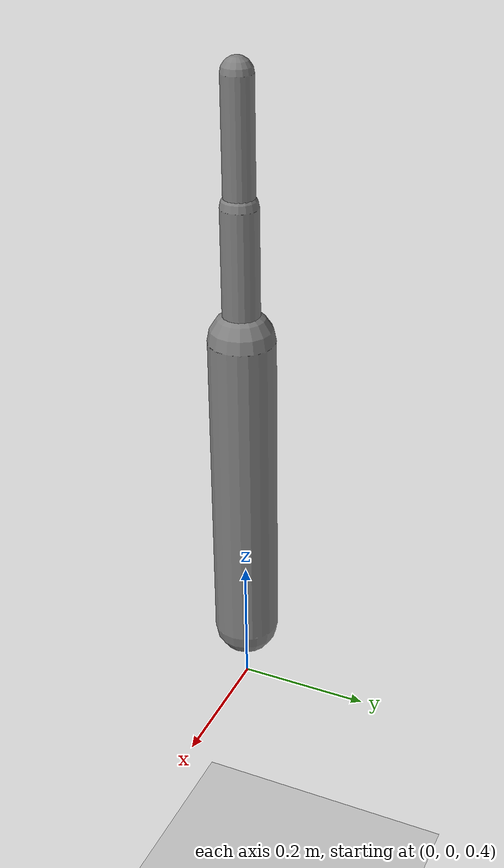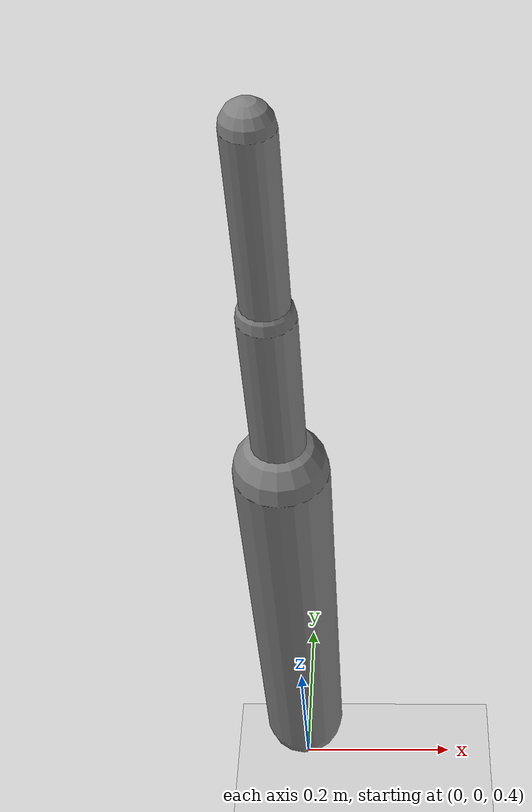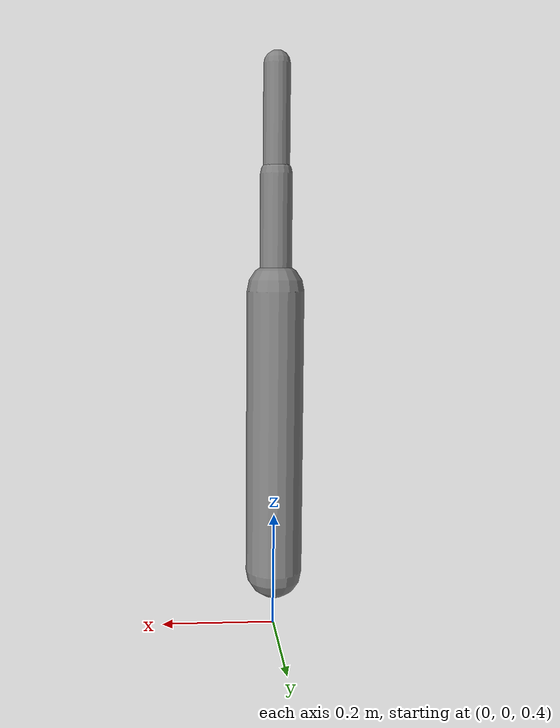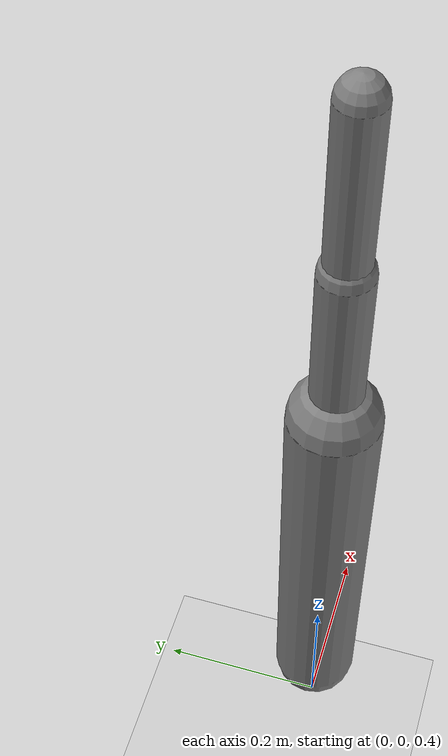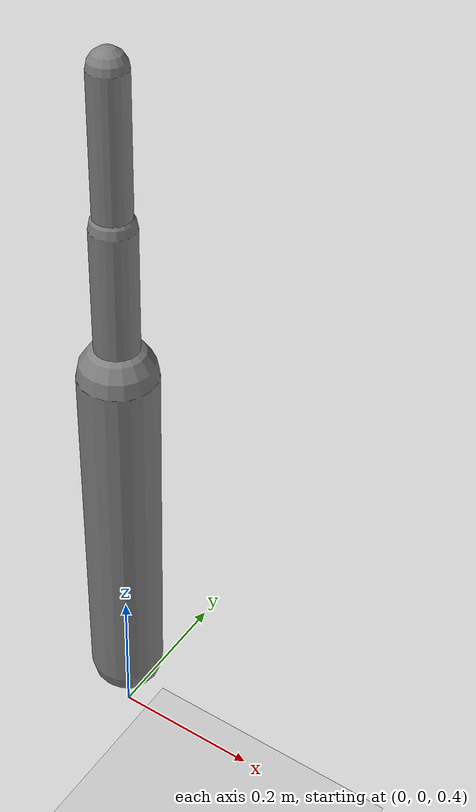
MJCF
<?xml version='1.0' encoding='UTF-8'?>
<mujoco model="RobotModel">
  <option gravity="0 0 -9.81" timestep="0.002" solver="CG" iterations="500" integrator="Euler"/>
  <worldbody>
    <geom name="Floor" type="plane" size="10 10 0.1" pos="0 0 0" rgba="0.8 0.8 0.8 1"/>
    <body name="Limb0" pos="0 0 0.5">
      <geom type="capsule" fromto="0 0 0 0 0 0.5" size="0.05" density="1000" contype="1" conaffinity="1"/>
      <body name="Limb0_b8982d0a" pos="0 0 0.5">
        <geom type="capsule" fromto="0 0 0 0 0 0.19950158226683612" size="0.027794134818172427" density="800" contype="1" conaffinity="1"/>
        <body name="Limb1_b8982d0a" pos="0 0 0.19950158226683612">
          <geom type="capsule" fromto="0 0 0 0 0 0.18193626638625493" size="0.023050820420381972" density="800" contype="1" conaffinity="1"/>
          <joint name="Joint_Limb0_b8982d0a_Limb1_b8982d0a_0" type="hinge" axis="0 1 0" range="-45 45"/>
        </body>
        <joint name="Joint_Limb0_Limb0_b8982d0a_0" type="hinge" axis="0 1 0" range="-60 60"/>
      </body>
    </body>
  </worldbody>
  <actuator>
    <position name="position_Actuator_Joint_Limb0_Limb0_b8982d0a_0" joint="Joint_Limb0_Limb0_b8982d0a_0" gear="1.0"/>
    <position name="position_Actuator_Joint_Limb0_b8982d0a_Limb1_b8982d0a_0" joint="Joint_Limb0_b8982d0a_Limb1_b8982d0a_0" gear="1.0"/>
  </actuator>
</mujoco>
